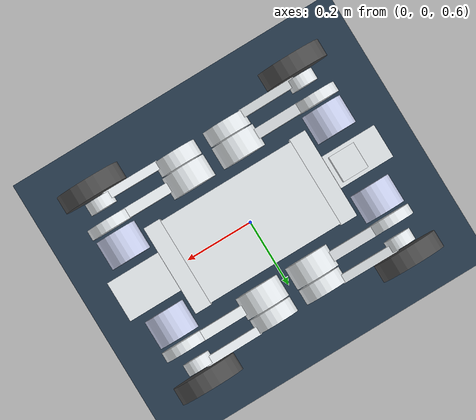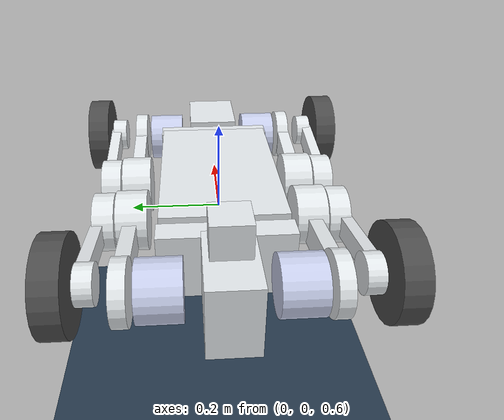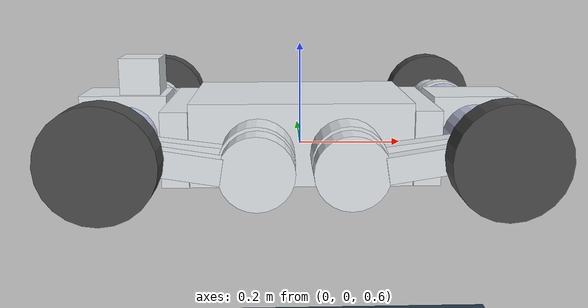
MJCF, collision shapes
<?xml version='1.0' encoding='utf-8'?>
<mujoco model="thunder_v4_mujoco">
  <!--V4 kinematics derived from thunder_v4/urdf/thunder_v4.urdf at 8b535d0; MJCF contact and scene defaults are maintained here. See ../README.md.-->
  <compiler angle="radian" meshdir="../meshes" eulerseq="zyx" autolimits="true" />
  <visual>
    <quality shadowsize="4096" />
    <map znear="0.05" />
  </visual>
  <default>
    <default class="thunder_v4">
      <joint limited="true" />
      <motor ctrllimited="true" />
      <geom condim="4" contype="1" conaffinity="15" solref="0.004 1" friction="1.0 0.005 0.0001" />
      <default class="thunder_v4_leg_joint_param">
        <joint damping="0.01" frictionloss="0.01" armature="0.01" />
      </default>
      <default class="thunder_v4_wheel_joint_param">
        <joint damping="0.02" frictionloss="0.01" armature="0.01" />
      </default>
      <default class="thunder_v4_rubber_wheel">
        <geom condim="4" solref="0.004 1" friction="1.0 0.005 0.0001" rgba="0.12 0.12 0.12 1" />
      </default>
    </default>
  </default>
  <custom>
    <numeric name="hardware_joint_velocity_limit_rad_s" size="16" data="17.48 17.48 17.48 17.48 17.48 17.48 17.48 17.48 17.48 17.48 17.48 17.48 44 44 44 44" />
  </custom>
  <asset>
    <material name="matplane" reflectance="0.3" texture="texplane" texrepeat="1 1" texuniform="true" />
    <material name="body_shell_black" rgba="0.006049 0.006995 0.008023 1" />
    <material name="joint_graphite" rgba="0.009134 0.010330 0.011612 1" />
    <material name="limb_graphite" rgba="0.006995 0.008023 0.009134 1" />
    <material name="sensor_black" rgba="0.003677 0.004391 0.005182 1" />
    <material name="wheel_black" rgba="0.001821 0.002125 0.002428 1" />
    <texture name="texplane" type="2d" builtin="checker" rgb1=".2 .3 .4" rgb2=".1 .15 .2" width="512" height="512" />
    <texture type="skybox" builtin="gradient" rgb1="1 1 1" rgb2=".6 .8 1" width="256" height="256" />
    <mesh name="base_link_visual" file="base_link.STL" />
    <mesh name="FR_hip_visual" file="fr_hip_link.STL" />
    <mesh name="FR_thigh_visual" file="fr_thigh_Link.STL" />
    <mesh name="FR_calf_visual" file="fr_calf_Link.STL" />
    <mesh name="FR_foot_visual" file="fr_foot_Link.STL" />
    <mesh name="FL_hip_visual" file="fl_hip_Link.STL" />
    <mesh name="FL_thigh_visual" file="fl_thigh_Link.STL" />
    <mesh name="FL_calf_visual" file="fl_calf_Link.STL" />
    <mesh name="FL_foot_visual" file="fl_foot_Link.STL" />
    <mesh name="RR_hip_visual" file="rr_hip_Link.STL" />
    <mesh name="RR_thigh_visual" file="rr_thigh_Link.STL" />
    <mesh name="RR_calf_visual" file="rr_calf_Link.STL" />
    <mesh name="RR_foot_visual" file="rr_foot_Link.STL" />
    <mesh name="RL_hip_visual" file="rl_hip_Link.STL" />
    <mesh name="RL_thigh_visual" file="rl_thigh_Link.STL" />
    <mesh name="RL_calf_visual" file="rl_calf_Link.STL" />
    <mesh name="RL_foot_visual" file="rl_foot_Link.STL" />
    <mesh name="lidar1_link_visual" file="lidar1_Link.STL" />
    <mesh name="camera1_link_visual" file="camera1_Link.STL" />
    <mesh name="lidar2_link_visual" file="lidar2_Link.STL" />
    <mesh name="camera2_link_visual" file="camera2_Link.STL" />
  </asset>
  <worldbody>
    <light directional="true" diffuse=".4 .4 .4" specular="0.1 0.1 0.1" pos="0 0 5" dir="0 0 -1" castshadow="false" />
    <light directional="true" diffuse=".6 .6 .6" specular="0.2 0.2 0.2" pos="0 0 4" dir="0 0 -1" />
    <geom name="ground" type="plane" size="0 0 1" material="matplane" condim="4" conaffinity="15" class="thunder_v4" />
    <body name="base_link" pos="0 0 0.55" childclass="thunder_v4">
      <inertial pos="-0.00311 0.00762 0.07473" mass="16.868" fullinertia="0.122066235704 0.52940502055 0.587890658018 0.0008819195624 -0.0014492906904 0.0012140132168" />
      <joint name="floating_base_joint" type="free" limited="false" />
      <site name="imu" size="0.01" pos="0 0 0" quat="1 0 0 0" />
      <site name="payload_top" size="0.01" pos="0 0 0.14" quat="1 0 0 0" />
      <camera name="front_camera" pos="0.423358800364963 -0.000496202974186816 0.11370714960317" xyaxes="0 -1 0 0 0 1" fovy="60" />
      <geom type="mesh" mesh="base_link_visual" contype="0" conaffinity="0" group="1" density="0" material="body_shell_black" pos="0 0 0" />
      <geom size="0.205 0.129 0.0775" pos="0 0.00124 0.07541" type="box" rgba="0.898039 0.917647 0.929412 1" />
      <geom size="0.025 0.135 0.07" pos="0.23 0 0.07" type="box" rgba="0.898039 0.917647 0.929412 1" />
      <geom size="0.025 0.135 0.07" pos="-0.23 0 0.07" type="box" rgba="0.898039 0.917647 0.929412 1" />
      <geom size="0.08 0.06 0.072" pos="0.335 0 0.08" type="box" rgba="0.898039 0.917647 0.929412 1" />
      <geom size="0.0825 0.05 0.075" pos="-0.3375 0 0.08" type="box" rgba="0.898039 0.917647 0.929412 1" />
      <geom size="0.0384 0.0384 0.04005" pos="-0.30638 0 0.184722" quat="0 0 0 -1" type="box" rgba="0.898039 0.917647 0.929412 1" />
      <body name="FR_hip" pos="0.249499 -0.0649956 0.08105">
        <inertial pos="0.07041 -0.04954 -7e-05" quat="0.565766 0.592107 0.405116 0.406446" mass="1.93169" diaginertia="0.00514498 0.00393162 0.00311582" />
        <joint name="FR_hip_joint" pos="0 0 0" axis="-1 0 0" range="-0.41 0.41" actuatorfrcrange="-120 120" limited="true" class="thunder_v4_leg_joint_param" />
        <geom type="mesh" mesh="FR_hip_visual" contype="0" conaffinity="0" group="1" density="0" material="joint_graphite" pos="0 0 0" />
        <geom size="0.06 0.0425" pos="0.07752 -0.06064 0.00083" quat="0.707105 0.707108 0 0" type="cylinder" rgba="0.792157 0.819608 0.933333 0" group="3" contype="1" conaffinity="15" solref="0.004 1" friction="0.9 0.2 0.2" />
        <body name="FR_thigh" pos="0.078 -0.0795 0">
          <inertial pos="-0.1667 -0.04208 -0.01113" quat="0.50583 0.47684 0.48978 0.52619" mass="2.90118" diaginertia="0.0440038 0.0418413 0.00435921" />
          <joint name="FR_thigh_joint" pos="0 0 0" axis="0 1 0" range="-3.14 0" actuatorfrcrange="-120 120" limited="true" class="thunder_v4_leg_joint_param" />
          <geom type="mesh" mesh="FR_thigh_visual" contype="0" conaffinity="0" group="1" density="0" material="limb_graphite" pos="0 0 0" />
          <geom size="0.064 0.015" pos="0 -0.0495 0" quat="0.707105 0.707108 0 0" type="cylinder" rgba="0.898039 0.917647 0.929412 0" group="3" contype="1" conaffinity="15" solref="0.004 1" friction="0.9 0.2 0.2" />
          <geom size="0.09 0.015 0.03" pos="-0.125 -0.05059 -0.01001" quat="0.997888 0 -0.0649542 0" type="box" rgba="0.898039 0.917647 0.929412 0" group="3" contype="1" conaffinity="15" solref="0.004 1" friction="0.9 0.2 0.2" />
          <geom size="0.0655 0.033" pos="-0.2485 -0.047 -0.0135" quat="0.707105 0.707108 0 0" type="cylinder" rgba="0.898039 0.917647 0.929412 0" group="3" contype="1" conaffinity="15" solref="0.004 1" friction="0.9 0.2 0.2" />
          <body name="FR_calf" pos="-0.249452 -0.0695 -0.01655">
            <inertial pos="0.10661 -0.04038 0.01356" quat="0.546947 0.484322 0.450572 0.513095" mass="1.67781" diaginertia="0.0246678 0.0238901 0.00165505" />
            <joint name="FR_calf_joint" pos="0 0 0" axis="0 1 0" range="0 3.14" actuatorfrcrange="-120 120" limited="true" class="thunder_v4_leg_joint_param" />
            <geom type="mesh" mesh="FR_calf_visual" contype="0" conaffinity="0" group="1" density="0" material="limb_graphite" pos="0 0 0" />
            <geom size="0.0635 0.0225" pos="0 -0.03653 0" quat="0.707105 0.707108 0 0" type="cylinder" rgba="0.898039 0.917647 0.929412 0" group="3" contype="1" conaffinity="15" solref="0.004 1" friction="0.9 0.2 0.2" />
            <geom size="0.085 0.0125 0.0225" pos="0.14 -0.04903 0.0185" quat="0.996802 0 -0.0799147 0" type="box" rgba="0.898039 0.917647 0.929412 0" group="3" contype="1" conaffinity="15" solref="0.004 1" friction="0.9 0.2 0.2" />
            <geom size="0.04 0.0175" pos="0.240758 -0.0404 0.0305" quat="0.707105 0.707108 0 0" type="cylinder" rgba="0.898039 0.917647 0.929412 0" group="3" contype="1" conaffinity="15" solref="0.004 1" friction="0.9 0.2 0.2" />
            <body name="FR_foot" pos="0.240758 -0.0729 0.0305">
              <inertial pos="0 -0.01671 0" quat="0.474781 0.524004 0.524005 0.474786" mass="0.68812" diaginertia="0.0037014 0.00194396 0.00194387" />
              <joint name="FR_foot_joint" pos="0 0 0" axis="0 1 0" actuatorfrcrange="-17 17" type="hinge" limited="false" class="thunder_v4_wheel_joint_param" />
              <geom type="mesh" mesh="FR_foot_visual" contype="0" conaffinity="0" group="1" density="0" material="wheel_black" pos="0 0 0" />
              <geom size="0.095 0.025585" pos="0 -0.01631 0" quat="0.707105 0.707108 0 0" type="cylinder" rgba="0.298039 0.298039 0.298039 0" group="3" contype="1" conaffinity="15" solref="0.004 1" name="FR_wheel" class="thunder_v4_rubber_wheel" />
            </body>
          </body>
        </body>
      </body>
      <body name="FL_hip" pos="0.249499 0.0650044 0.08105">
        <inertial pos="0.07038 0.04954 0.00024" quat="0.403874 0.405504 0.568197 0.591274" mass="1.93169" diaginertia="0.00514838 0.00391783 0.00312444" />
        <joint name="FL_hip_joint" pos="0 0 0" axis="-1 0 0" range="-0.41 0.41" actuatorfrcrange="-120 120" limited="true" class="thunder_v4_leg_joint_param" />
        <geom type="mesh" mesh="FL_hip_visual" contype="0" conaffinity="0" group="1" density="0" material="joint_graphite" pos="0 0 0" />
        <geom size="0.06 0.0425" pos="0.07752 0.06064 0.00083" quat="0.707105 0.707108 0 0" type="cylinder" rgba="0.792157 0.819608 0.933333 0" group="3" contype="1" conaffinity="15" solref="0.004 1" friction="0.9 0.2 0.2" />
        <body name="FL_thigh" pos="0.078 0.0795 0">
          <inertial pos="-0.16674 0.04208 -0.01068" quat="0.521681 0.493997 0.472877 0.510102" mass="2.90118" diaginertia="0.0440056 0.041837 0.00436553" />
          <joint name="FL_thigh_joint" pos="0 0 0" axis="0 -1 0" range="0 3.14" actuatorfrcrange="-120 120" limited="true" class="thunder_v4_leg_joint_param" />
          <geom type="mesh" mesh="FL_thigh_visual" contype="0" conaffinity="0" group="1" density="0" material="limb_graphite" pos="0 0 0" />
          <geom size="0.064 0.015" pos="0 0.0495 0" quat="0.707105 0.707108 0 0" type="cylinder" rgba="0.898039 0.917647 0.929412 0" group="3" contype="1" conaffinity="15" solref="0.004 1" friction="0.9 0.2 0.2" />
          <geom size="0.09 0.015 0.03" pos="-0.125 0.05059 -0.01001" quat="0.997888 0 -0.0649542 0" type="box" rgba="0.898039 0.917647 0.929412 0" group="3" contype="1" conaffinity="15" solref="0.004 1" friction="0.9 0.2 0.2" />
          <geom size="0.0655 0.033" pos="-0.2485 0.047 -0.0135" quat="0.707105 0.707108 0 0" type="cylinder" rgba="0.898039 0.917647 0.929412 0" group="3" contype="1" conaffinity="15" solref="0.004 1" friction="0.9 0.2 0.2" />
          <body name="FL_calf" pos="-0.249478 0.0695 -0.01615">
            <inertial pos="0.10664 0.04038 0.01327" quat="0.515444 0.448503 0.486476 0.544521" mass="1.67781" diaginertia="0.0246702 0.0238925 0.00165493" />
            <joint name="FL_calf_joint" pos="0 0 0" axis="0 -1 0" range="-3.14 0" actuatorfrcrange="-120 120" limited="true" class="thunder_v4_leg_joint_param" />
            <geom type="mesh" mesh="FL_calf_visual" contype="0" conaffinity="0" group="1" density="0" material="limb_graphite" pos="0 0 0" />
            <geom size="0.0635 0.0225" pos="0 0.03653 0" quat="0.707105 0.707108 0 0" type="cylinder" rgba="0.898039 0.917647 0.929412 0" group="3" contype="1" conaffinity="15" solref="0.004 1" friction="0.9 0.2 0.2" />
            <geom size="0.085 0.0125 0.0225" pos="0.14 0.04903 0.0185" quat="0.996802 0 -0.0799147 0" type="box" rgba="0.898039 0.917647 0.929412 0" group="3" contype="1" conaffinity="15" solref="0.004 1" friction="0.9 0.2 0.2" />
            <geom size="0.04 0.0175" pos="0.240809 0.0404 0.0301" quat="0.707105 0.707108 0 0" type="cylinder" rgba="0.898039 0.917647 0.929412 0" group="3" contype="1" conaffinity="15" solref="0.004 1" friction="0.9 0.2 0.2" />
            <body name="FL_foot" pos="0.240809 0.0729 0.0301">
              <inertial pos="0 0.01671 0" quat="0.527685 0.470692 0.470687 0.527684" mass="0.68812" diaginertia="0.0037014 0.00194396 0.00194387" />
              <joint name="FL_foot_joint" pos="0 0 0" axis="0 -1 0" actuatorfrcrange="-17 17" type="hinge" limited="false" class="thunder_v4_wheel_joint_param" />
              <geom type="mesh" mesh="FL_foot_visual" contype="0" conaffinity="0" group="1" density="0" material="wheel_black" pos="0 0 0" />
              <geom size="0.095 0.025585" pos="0 0.01631 0" quat="0.707105 0.707108 0 0" type="cylinder" rgba="0.298039 0.298039 0.298039 0" group="3" contype="1" conaffinity="15" solref="0.004 1" name="FL_wheel" class="thunder_v4_rubber_wheel" />
            </body>
          </body>
        </body>
      </body>
      <body name="RR_hip" pos="-0.249501 -0.0649956 0.08105">
        <inertial pos="-0.07032 -0.04954 0.00039" quat="0.40538 0.40228 0.588371 0.572414" mass="1.93169" diaginertia="0.00514878 0.00390691 0.00312906" />
        <joint name="RR_hip_joint" pos="0 0 0" axis="1 0 0" range="-0.41 0.41" actuatorfrcrange="-120 120" limited="true" class="thunder_v4_leg_joint_param" />
        <geom type="mesh" mesh="RR_hip_visual" contype="0" conaffinity="0" group="1" density="0" material="joint_graphite" pos="0 0 0" />
        <geom size="0.06 0.0425" pos="-0.07752 -0.06064 0.00083" quat="0.707105 0.707108 0 0" type="cylinder" rgba="0.792157 0.819608 0.933333 0" group="3" contype="1" conaffinity="15" solref="0.004 1" friction="0.9 0.2 0.2" />
        <body name="RR_thigh" pos="-0.078 -0.0795 0">
          <inertial pos="0.16677 -0.04208 -0.01085" quat="0.493887 0.52172 0.510309 0.472725" mass="2.90118" diaginertia="0.044016 0.0418387 0.00437483" />
          <joint name="RR_thigh_joint" pos="0 0 0" axis="0 1 0" range="0 3.14" actuatorfrcrange="-120 120" limited="true" class="thunder_v4_leg_joint_param" />
          <geom type="mesh" mesh="RR_thigh_visual" contype="0" conaffinity="0" group="1" density="0" material="limb_graphite" pos="0 0 0" />
          <geom size="0.064 0.015" pos="0 -0.0495 0" quat="0.707105 0.707108 0 0" type="cylinder" rgba="0.898039 0.917647 0.929412 0" group="3" contype="1" conaffinity="15" solref="0.004 1" friction="0.9 0.2 0.2" />
          <geom size="0.09 0.015 0.03" pos="0.125 -0.05059 -0.01001" quat="0.997888 0 0.0649542 0" type="box" rgba="0.898039 0.917647 0.929412 0" group="3" contype="1" conaffinity="15" solref="0.004 1" friction="0.9 0.2 0.2" />
          <geom size="0.0655 0.033" pos="0.2485 -0.047 -0.0135" quat="0.707105 0.707108 0 0" type="cylinder" rgba="0.898039 0.917647 0.929412 0" group="3" contype="1" conaffinity="15" solref="0.004 1" friction="0.9 0.2 0.2" />
          <body name="RR_calf" pos="0.249452 -0.0695 -0.01655">
            <inertial pos="-0.10663 -0.04038 0.01345" quat="0.448123 0.515799 0.544821 0.486114" mass="1.67781" diaginertia="0.0246651 0.0238877 0.00165474" />
            <joint name="RR_calf_joint" pos="0 0 0" axis="0 1 0" range="-3.14 3.14" actuatorfrcrange="-120 120" limited="true" class="thunder_v4_leg_joint_param" />
            <geom type="mesh" mesh="RR_calf_visual" contype="0" conaffinity="0" group="1" density="0" material="limb_graphite" pos="0 0 0" />
            <geom size="0.0635 0.0225" pos="0 -0.03653 0" quat="0.707105 0.707108 0 0" type="cylinder" rgba="0.898039 0.917647 0.929412 0" group="3" contype="1" conaffinity="15" solref="0.004 1" friction="0.9 0.2 0.2" />
            <geom size="0.085 0.0125 0.0225" pos="-0.14 -0.04903 0.0185" quat="0.996802 0 0.0799147 0" type="box" rgba="0.898039 0.917647 0.929412 0" group="3" contype="1" conaffinity="15" solref="0.004 1" friction="0.9 0.2 0.2" />
            <geom size="0.04 0.0175" pos="-0.240758 -0.0404 0.0305" quat="0.707105 0.707108 0 0" type="cylinder" rgba="0.898039 0.917647 0.929412 0" group="3" contype="1" conaffinity="15" solref="0.004 1" friction="0.9 0.2 0.2" />
            <body name="RR_foot" pos="-0.240758 -0.0729 0.0305">
              <inertial pos="0 -0.01671 0" quat="0.47211 0.526417 0.526416 0.472105" mass="0.68812" diaginertia="0.0037014 0.00194396 0.00194387" />
              <joint name="RR_foot_joint" pos="0 0 0" axis="0 1 0" actuatorfrcrange="-17 17" type="hinge" limited="false" class="thunder_v4_wheel_joint_param" />
              <geom type="mesh" mesh="RR_foot_visual" contype="0" conaffinity="0" group="1" density="0" material="wheel_black" pos="0 0 0" />
              <geom size="0.095 0.025585" pos="0 -0.01631 0" quat="0.707105 0.707108 0 0" type="cylinder" rgba="0.298039 0.298039 0.298039 0" group="3" contype="1" conaffinity="15" solref="0.004 1" name="RR_wheel" class="thunder_v4_rubber_wheel" />
            </body>
          </body>
        </body>
      </body>
      <body name="RL_hip" pos="-0.249501 0.0650044 0.08105">
        <inertial pos="-0.07041 0.04954 -7e-05" quat="0.592107 0.565766 0.406446 0.405116" mass="1.93169" diaginertia="0.00514498 0.00393162 0.00311582" />
        <joint name="RL_hip_joint" pos="0 0 0" axis="1 0 0" range="-0.41 0.41" actuatorfrcrange="-120 120" limited="true" class="thunder_v4_leg_joint_param" />
        <geom type="mesh" mesh="RL_hip_visual" contype="0" conaffinity="0" group="1" density="0" material="joint_graphite" pos="0 0 0" />
        <geom size="0.06 0.0425" pos="-0.07752 0.06064 0.00083" quat="0.707105 0.707108 0 0" type="cylinder" rgba="0.792157 0.819608 0.933333 0" group="3" contype="1" conaffinity="15" solref="0.004 1" friction="0.9 0.2 0.2" />
        <body name="RL_thigh" pos="-0.078 0.0795 0">
          <inertial pos="0.1667 0.04208 -0.01113" quat="0.47684 0.50583 0.52619 0.48978" mass="2.90118" diaginertia="0.0440038 0.0418413 0.00435921" />
          <joint name="RL_thigh_joint" pos="0 0 0" axis="0 -1 0" range="-3.14 0" actuatorfrcrange="-120 120" limited="true" class="thunder_v4_leg_joint_param" />
          <geom type="mesh" mesh="RL_thigh_visual" contype="0" conaffinity="0" group="1" density="0" material="limb_graphite" pos="0 0 0" />
          <geom size="0.064 0.015" pos="0 0.0495 0" quat="0.707105 0.707108 0 0" type="cylinder" rgba="0.898039 0.917647 0.929412 0" group="3" contype="1" conaffinity="15" solref="0.004 1" friction="0.9 0.2 0.2" />
          <geom size="0.09 0.015 0.03" pos="0.125 0.05059 -0.01001" quat="0.997888 0 0.0649542 0" type="box" rgba="0.898039 0.917647 0.929412 0" group="3" contype="1" conaffinity="15" solref="0.004 1" friction="0.9 0.2 0.2" />
          <geom size="0.0655 0.033" pos="0.2485 0.047 -0.0135" quat="0.707105 0.707108 0 0" type="cylinder" rgba="0.898039 0.917647 0.929412 0" group="3" contype="1" conaffinity="15" solref="0.004 1" friction="0.9 0.2 0.2" />
          <body name="RL_calf" pos="0.249452 0.0695 -0.01655">
            <inertial pos="-0.10661 0.04038 0.01356" quat="0.484322 0.546947 0.513095 0.450572" mass="1.67781" diaginertia="0.0246678 0.0238901 0.00165505" />
            <joint name="RL_calf_joint" pos="0 0 0" axis="0 -1 0" range="-3.14 3.14" actuatorfrcrange="-120 120" limited="true" class="thunder_v4_leg_joint_param" />
            <geom type="mesh" mesh="RL_calf_visual" contype="0" conaffinity="0" group="1" density="0" material="limb_graphite" pos="0 0 0" />
            <geom size="0.0635 0.0225" pos="0 0.03653 0" quat="0.707105 0.707108 0 0" type="cylinder" rgba="0.898039 0.917647 0.929412 0" group="3" contype="1" conaffinity="15" solref="0.004 1" friction="0.9 0.2 0.2" />
            <geom size="0.085 0.0125 0.0225" pos="-0.14 0.04903 0.0185" quat="0.996802 0 0.0799147 0" type="box" rgba="0.898039 0.917647 0.929412 0" group="3" contype="1" conaffinity="15" solref="0.004 1" friction="0.9 0.2 0.2" />
            <geom size="0.04 0.0175" pos="-0.240758 0.0404 0.0305" quat="0.707105 0.707108 0 0" type="cylinder" rgba="0.898039 0.917647 0.929412 0" group="3" contype="1" conaffinity="15" solref="0.004 1" friction="0.9 0.2 0.2" />
            <body name="RL_foot" pos="-0.240758 0.0729 0.0305">
              <inertial pos="0 0.01671 0" quat="0.524004 0.474781 0.474786 0.524005" mass="0.68812" diaginertia="0.0037014 0.00194396 0.00194387" />
              <joint name="RL_foot_joint" pos="0 0 0" axis="0 -1 0" actuatorfrcrange="-17 17" type="hinge" limited="false" class="thunder_v4_wheel_joint_param" />
              <geom type="mesh" mesh="RL_foot_visual" contype="0" conaffinity="0" group="1" density="0" material="wheel_black" pos="0 0 0" />
              <geom size="0.095 0.025585" pos="0 0.01631 0" quat="0.707105 0.707108 0 0" type="cylinder" rgba="0.298039 0.298039 0.298039 0" group="3" contype="1" conaffinity="15" solref="0.004 1" name="RL_wheel" class="thunder_v4_rubber_wheel" />
            </body>
          </body>
        </body>
      </body>
      <body name="lidar1_link" pos="0.402876074867229 0 0.0582019450665819" quat="1.492568566e-15 -0.9238795325 -6.182421429e-16 -0.3826834324">
        <inertial pos="-0.00115 -2e-05 -0.0094" mass="0.05259" fullinertia="3.0375286564e-05 3.2193647325e-05 2.1127048689e-05 -5.05043e-09 -9.603321e-07 -2.397308e-08" />
        <geom type="mesh" mesh="lidar1_link_visual" contype="0" conaffinity="0" group="1" density="0" material="sensor_black" pos="0 0 0" />
        <site name="lidar1_link_site" pos="0 0 0" size="0.001" />
      </body>
      <body name="camera1_link" pos="0.423358800364963 -0.000496202974186816 0.11370714960317" quat="0.405579788 -0.5792279659 0.5792279648 -0.4055797873">
        <inertial pos="-0.00092 8e-05 -0.01518" mass="0.02011" fullinertia="3.235525732e-06 1.5616883332e-05 1.4933780192e-05 -4.490096e-09 -2.4411784e-08 6.998416e-09" />
        <geom type="mesh" mesh="camera1_link_visual" contype="0" conaffinity="0" group="1" density="0" material="sensor_black" pos="0 0 0" />
      </body>
      <body name="lidar2_link" pos="-0.306379925608353 0 0.194171688920484" quat="1.615544574e-15 0 0 -1">
        <inertial pos="-0.00115 -2e-05 -0.0094" mass="0.05259" fullinertia="3.0375286564e-05 3.2193647325e-05 2.1127048689e-05 -5.05043e-09 -9.603321e-07 -2.397308e-08" />
        <geom type="mesh" mesh="lidar2_link_visual" contype="0" conaffinity="0" group="1" density="0" material="sensor_black" pos="0 0 0" />
        <site name="lidar2_link_site" pos="0 0 0" size="0.001" />
      </body>
      <body name="camera2_link" pos="-0.425909318444504 0 0.0790135977296091" quat="0.7070918521 -0.00459746036 -0.7070918352 -0.004594863066">
        <inertial pos="-0.00092 8e-05 -0.01518" mass="0.02011" fullinertia="3.235525732e-06 1.5616883332e-05 1.4933780192e-05 -4.490096e-09 -2.4411784e-08 6.998416e-09" />
        <geom type="mesh" mesh="camera2_link_visual" contype="0" conaffinity="0" group="1" density="0" material="sensor_black" pos="0 0 0" />
      </body>
      <site name="lidar_site" pos="-0.30638 0 0.19417" size="0.001" />
    </body>
  </worldbody>
  <actuator>
    <motor name="FR_hip_joint" joint="FR_hip_joint" gear="1" ctrllimited="true" ctrlrange="-120 120" />
    <motor name="FR_thigh_joint" joint="FR_thigh_joint" gear="1" ctrllimited="true" ctrlrange="-120 120" />
    <motor name="FR_calf_joint" joint="FR_calf_joint" gear="1" ctrllimited="true" ctrlrange="-120 120" />
    <motor name="FL_hip_joint" joint="FL_hip_joint" gear="1" ctrllimited="true" ctrlrange="-120 120" />
    <motor name="FL_thigh_joint" joint="FL_thigh_joint" gear="1" ctrllimited="true" ctrlrange="-120 120" />
    <motor name="FL_calf_joint" joint="FL_calf_joint" gear="1" ctrllimited="true" ctrlrange="-120 120" />
    <motor name="RR_hip_joint" joint="RR_hip_joint" gear="1" ctrllimited="true" ctrlrange="-120 120" />
    <motor name="RR_thigh_joint" joint="RR_thigh_joint" gear="1" ctrllimited="true" ctrlrange="-120 120" />
    <motor name="RR_calf_joint" joint="RR_calf_joint" gear="1" ctrllimited="true" ctrlrange="-120 120" />
    <motor name="RL_hip_joint" joint="RL_hip_joint" gear="1" ctrllimited="true" ctrlrange="-120 120" />
    <motor name="RL_thigh_joint" joint="RL_thigh_joint" gear="1" ctrllimited="true" ctrlrange="-120 120" />
    <motor name="RL_calf_joint" joint="RL_calf_joint" gear="1" ctrllimited="true" ctrlrange="-120 120" />
    <motor name="FR_foot_joint" joint="FR_foot_joint" gear="1" ctrllimited="true" ctrlrange="-17 17" />
    <motor name="FL_foot_joint" joint="FL_foot_joint" gear="1" ctrllimited="true" ctrlrange="-17 17" />
    <motor name="RR_foot_joint" joint="RR_foot_joint" gear="1" ctrllimited="true" ctrlrange="-17 17" />
    <motor name="RL_foot_joint" joint="RL_foot_joint" gear="1" ctrllimited="true" ctrlrange="-17 17" />
  </actuator>
  <sensor>
    <framequat name="orientation" objtype="site" noise="0.001" objname="imu" />
    <framepos name="position" objtype="site" noise="0.001" objname="imu" />
    <gyro name="angular-velocity" site="imu" noise="0.005" cutoff="34.9" />
    <velocimeter name="linear-velocity" site="imu" noise="0.001" cutoff="30" />
    <accelerometer name="linear-acceleration" site="imu" noise="0.005" cutoff="157" />
    <framequat name="lidar-orientation" objtype="site" noise="0.001" objname="lidar_site" />
    <framepos name="lidar-position" objtype="site" noise="0.001" objname="lidar_site" />
    <gyro name="lidar-angular-velocity" site="lidar_site" noise="0.005" cutoff="34.9" />
    <velocimeter name="lidar-linear-velocity" site="lidar_site" noise="0.001" cutoff="30" />
    <accelerometer name="lidar-linear-acceleration" site="lidar_site" noise="0.005" cutoff="157" />
    <magnetometer name="magnetometer" site="imu" />
  </sensor>
  <keyframe>
    <key name="v4_nominal_stand" qpos="0 0 0.6 1 0 0 0 -0.1 -0.8 1.8 0 0.1 0.8 -1.8 0 0.1 0.8 -1.8 0 -0.1 -0.8 1.8 0" />
  </keyframe>
</mujoco>
